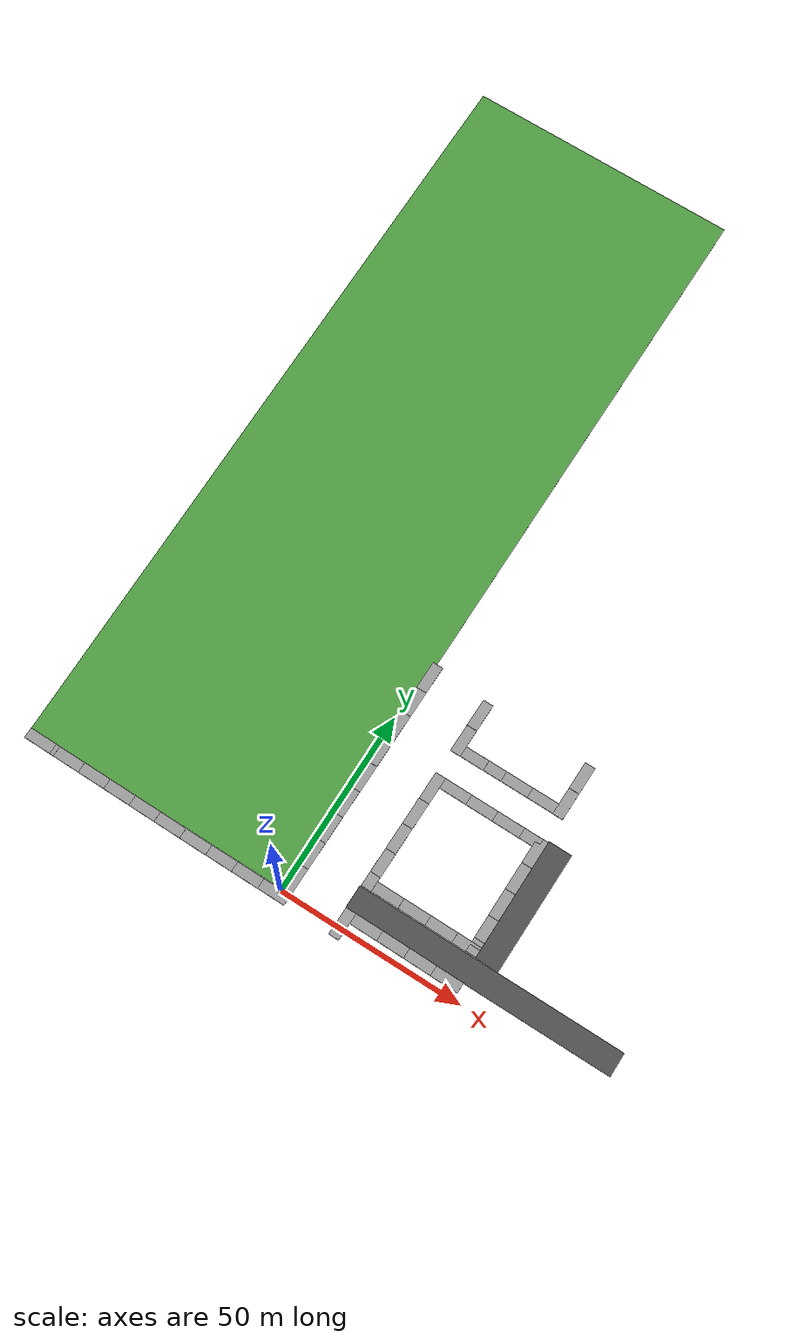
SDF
<sdf version="1.6">
 <world name="default">
  <model name="grey_wall_clone">
   <static>1</static>
   <link name="link">
    <pose>0 0 1.4 0 -0 0</pose>
    <collision name="collision"><geometry><box><size>7.5 0.2 2.8</size></box></geometry></collision>
    <visual name="visual">
     <cast_shadows>0</cast_shadows>
     <geometry><box><size>7.5 0.2 2.8</size></box></geometry>
     <material>
      <script>
       <uri>model://grey_wall/materials/scripts</uri>
       <uri>model://grey_wall/materials/textures</uri>
       <name>vrc/grey_wall</name>
      </script>
     </material>
    </visual>
   </link>
   <pose>-1.20689 0.282178 -0.016498 -1.5862 0.002658 3.13547</pose>
  </model>
  <model name="Grass">
   <link name="link_0">
    <inertial>
     <mass>1393.09</mass>
     <inertia>
      <ixx>639346</ixx>
      <ixy>0</ixy>
      <ixz>0</ixz>
      <iyy>5.00315e+06</iyy>
      <iyz>0</iyz>
      <izz>5.64249e+06</izz>
     </inertia>
    </inertial>
    <pose>41.4488 69.2093 0 0 0 -1.57123</pose>
    <gravity>0</gravity>
    <self_collide>1</self_collide>
    <visual name="visual">
     <geometry><box><size>207.597 74.211 0.068473</size></box></geometry>
     <material>
      <lighting>1</lighting>
      <script><uri>file://media/materials/scripts/gazebo.material</uri><name>Gazebo/Grass</name></script>
      <shader type="vertex"><normal_map>__default__</normal_map></shader>
      <ambient>0.3 0.3 0.3 1</ambient>
      <diffuse>0.7 0.7 0.7 1</diffuse>
      <specular>0.01 0.01 0.01 1</specular>
      <emissive>0 0 0 1</emissive>
     </material>
    </visual>
    <collision name="collision_0">
     <geometry><box><size>207.597 74.211 0.068473</size></box></geometry>
     <surface>
      <friction>
       <ode><mu>1</mu><mu2>1</mu2><fdir1>0 0 0</fdir1><slip1>0</slip1><slip2>0</slip2></ode>
       <torsional>
        <coefficient>1</coefficient>
        <patch_radius>0</patch_radius>
        <surface_radius>0</surface_radius>
        <use_patch_radius>1</use_patch_radius>
        <ode><slip>0</slip></ode>
       </torsional>
      </friction>
      <bounce><restitution_coefficient>0</restitution_coefficient><threshold>1e+06</threshold></bounce>
      <contact>
       <collide_without_contact>0</collide_without_contact>
       <collide_without_contact_bitmask>1</collide_without_contact_bitmask>
       <collide_bitmask>1</collide_bitmask>
       <ode>
        <soft_cfm>0</soft_cfm>
        <soft_erp>0.2</soft_erp>
        <kp>1e+13</kp>
        <kd>1</kd>
        <max_vel>0.01</max_vel>
        <min_depth>0</min_depth>
       </ode>
       <bullet>
        <split_impulse>1</split_impulse>
        <split_impulse_penetration_threshold>-0.01</split_impulse_penetration_threshold>
        <soft_cfm>0</soft_cfm>
        <soft_erp>0.2</soft_erp>
        <kp>1e+13</kp>
        <kd>1</kd>
       </bullet>
      </contact>
     </surface>
    </collision>
   </link>
   <static>1</static>
   <pose>-77.1234 35.0147 0 0 -0 0</pose>
  </model>
  <model name="grey_wall_clone_clone">
   <static>1</static>
   <link name="link">
    <pose>0 0 1.4 0 -0 0</pose>
    <collision name="collision"><geometry><box><size>7.5 0.2 2.8</size></box></geometry></collision>
    <visual name="visual">
     <cast_shadows>0</cast_shadows>
     <geometry><box><size>7.5 0.2 2.8</size></box></geometry>
     <material>
      <script>
       <uri>model://grey_wall/materials/scripts</uri>
       <uri>model://grey_wall/materials/textures</uri>
       <name>vrc/grey_wall</name>
      </script>
     </material>
    </visual>
   </link>
   <pose>-8.68806 0.297918 -0.016498 -1.5862 0.002658 3.13547</pose>
  </model>
  <model name="grey_wall_clone_clone_0">
   <static>1</static>
   <link name="link">
    <pose>0 0 1.4 0 -0 0</pose>
    <collision name="collision"><geometry><box><size>7.5 0.2 2.8</size></box></geometry></collision>
    <visual name="visual">
     <cast_shadows>0</cast_shadows>
     <geometry><box><size>7.5 0.2 2.8</size></box></geometry>
     <material>
      <script>
       <uri>model://grey_wall/materials/scripts</uri>
       <uri>model://grey_wall/materials/textures</uri>
       <name>vrc/grey_wall</name>
      </script>
     </material>
    </visual>
   </link>
   <pose>-16.1629 0.317248 -0.016498 -1.5862 0.002658 3.13547</pose>
  </model>
  <model name="grey_wall_clone_clone_1">
   <static>1</static>
   <link name="link">
    <pose>0 0 1.4 0 -0 0</pose>
    <collision name="collision"><geometry><box><size>7.5 0.2 2.8</size></box></geometry></collision>
    <visual name="visual">
     <cast_shadows>0</cast_shadows>
     <geometry><box><size>7.5 0.2 2.8</size></box></geometry>
     <material>
      <script>
       <uri>model://grey_wall/materials/scripts</uri>
       <uri>model://grey_wall/materials/textures</uri>
       <name>vrc/grey_wall</name>
      </script>
     </material>
    </visual>
   </link>
   <pose>-23.6084 0.328788 -0.016498 -1.5862 0.002658 3.13547</pose>
  </model>
  <model name="grey_wall_clone_clone_2">
   <static>1</static>
   <link name="link">
    <pose>0 0 1.4 0 -0 0</pose>
    <collision name="collision"><geometry><box><size>7.5 0.2 2.8</size></box></geometry></collision>
    <visual name="visual">
     <cast_shadows>0</cast_shadows>
     <geometry><box><size>7.5 0.2 2.8</size></box></geometry>
     <material>
      <script>
       <uri>model://grey_wall/materials/scripts</uri>
       <uri>model://grey_wall/materials/textures</uri>
       <name>vrc/grey_wall</name>
      </script>
     </material>
    </visual>
   </link>
   <pose>-31.0663 0.368188 -0.016498 -1.5862 0.002658 3.13547</pose>
  </model>
  <model name="grey_wall_clone_clone_3">
   <static>1</static>
   <link name="link">
    <pose>0 0 1.4 0 -0 0</pose>
    <collision name="collision"><geometry><box><size>7.5 0.2 2.8</size></box></geometry></collision>
    <visual name="visual">
     <cast_shadows>0</cast_shadows>
     <geometry><box><size>7.5 0.2 2.8</size></box></geometry>
     <material>
      <script>
       <uri>model://grey_wall/materials/scripts</uri>
       <uri>model://grey_wall/materials/textures</uri>
       <name>vrc/grey_wall</name>
      </script>
     </material>
    </visual>
   </link>
   <pose>-38.4619 0.420228 -0.016498 -1.5862 0.002658 3.13547</pose>
  </model>
  <model name="grey_wall_clone_clone_4">
   <static>1</static>
   <link name="link">
    <pose>0 0 1.4 0 -0 0</pose>
    <collision name="collision"><geometry><box><size>7.5 0.2 2.8</size></box></geometry></collision>
    <visual name="visual">
     <cast_shadows>0</cast_shadows>
     <geometry><box><size>7.5 0.2 2.8</size></box></geometry>
     <material>
      <script>
       <uri>model://grey_wall/materials/scripts</uri>
       <uri>model://grey_wall/materials/textures</uri>
       <name>vrc/grey_wall</name>
      </script>
     </material>
    </visual>
   </link>
   <pose>-45.7935 0.470214 -0.016498 -1.5862 0.002658 3.13547</pose>
  </model>
  <model name="grey_wall_clone_clone_5">
   <static>1</static>
   <link name="link">
    <pose>0 0 1.4 0 -0 0</pose>
    <collision name="collision"><geometry><box><size>7.5 0.2 2.8</size></box></geometry></collision>
    <visual name="visual">
     <cast_shadows>0</cast_shadows>
     <geometry><box><size>7.5 0.2 2.8</size></box></geometry>
     <material>
      <script>
       <uri>model://grey_wall/materials/scripts</uri>
       <uri>model://grey_wall/materials/textures</uri>
       <name>vrc/grey_wall</name>
      </script>
     </material>
    </visual>
   </link>
   <pose>-53.2131 0.521137 -0.016498 -1.5862 0.002658 3.13547</pose>
  </model>
  <model name="grey_wall_clone_clone_6">
   <static>1</static>
   <link name="link">
    <pose>0 0 1.4 0 -0 0</pose>
    <collision name="collision"><geometry><box><size>7.5 0.2 2.8</size></box></geometry></collision>
    <visual name="visual">
     <cast_shadows>0</cast_shadows>
     <geometry><box><size>7.5 0.2 2.8</size></box></geometry>
     <material>
      <script>
       <uri>model://grey_wall/materials/scripts</uri>
       <uri>model://grey_wall/materials/textures</uri>
       <name>vrc/grey_wall</name>
      </script>
     </material>
    </visual>
   </link>
   <pose>-60.7192 0.56687 -0.016498 -1.5862 0.002658 3.13547</pose>
  </model>
  <model name="grey_wall_clone_clone_7">
   <static>1</static>
   <link name="link">
    <pose>0 0 1.4 0 -0 0</pose>
    <collision name="collision"><geometry><box><size>7.5 0.2 2.8</size></box></geometry></collision>
    <visual name="visual">
     <cast_shadows>0</cast_shadows>
     <geometry><box><size>7.5 0.2 2.8</size></box></geometry>
     <material>
      <script>
       <uri>model://grey_wall/materials/scripts</uri>
       <uri>model://grey_wall/materials/textures</uri>
       <name>vrc/grey_wall</name>
      </script>
     </material>
    </visual>
   </link>
   <pose>-68.0673 0.620468 -0.016498 -1.5862 0.002658 3.13547</pose>
  </model>
  <model name="grey_wall_clone_clone_8">
   <static>1</static>
   <link name="link">
    <pose>0 0 1.4 0 -0 0</pose>
    <collision name="collision"><geometry><box><size>7.5 0.2 2.8</size></box></geometry></collision>
    <visual name="visual">
     <cast_shadows>0</cast_shadows>
     <geometry><box><size>7.5 0.2 2.8</size></box></geometry>
     <material>
      <script>
       <uri>model://grey_wall/materials/scripts</uri>
       <uri>model://grey_wall/materials/textures</uri>
       <name>vrc/grey_wall</name>
      </script>
     </material>
    </visual>
   </link>
   <pose>-69.1277 0.631045 -0.012312 -1.5862 0.002658 3.13547</pose>
  </model>
  <model name="grey_wall_clone_clone_9">
   <static>1</static>
   <link name="link">
    <pose>0 0 1.4 0 -0 0</pose>
    <collision name="collision"><geometry><box><size>7.5 0.2 2.8</size></box></geometry></collision>
    <visual name="visual">
     <cast_shadows>0</cast_shadows>
     <geometry><box><size>7.5 0.2 2.8</size></box></geometry>
     <material>
      <script>
       <uri>model://grey_wall/materials/scripts</uri>
       <uri>model://grey_wall/materials/textures</uri>
       <name>vrc/grey_wall</name>
      </script>
     </material>
    </visual>
   </link>
   <pose>2.599 4.01474 -0.016998 -1.57343 0.001892 1.56332</pose>
  </model>
  <model name="grey_wall_clone_clone_9_clone">
   <static>1</static>
   <link name="link">
    <pose>0 0 1.4 0 -0 0</pose>
    <collision name="collision"><geometry><box><size>7.5 0.2 2.8</size></box></geometry></collision>
    <visual name="visual">
     <cast_shadows>0</cast_shadows>
     <geometry><box><size>7.5 0.2 2.8</size></box></geometry>
     <material>
      <script>
       <uri>model://grey_wall/materials/scripts</uri>
       <uri>model://grey_wall/materials/textures</uri>
       <name>vrc/grey_wall</name>
      </script>
     </material>
    </visual>
   </link>
   <pose>2.65569 11.4997 -0.016993 -1.57343 0.001892 1.56332</pose>
  </model>
  <model name="grey_wall_clone_clone_9_clone_0">
   <static>1</static>
   <link name="link">
    <pose>0 0 1.4 0 -0 0</pose>
    <collision name="collision"><geometry><box><size>7.5 0.2 2.8</size></box></geometry></collision>
    <visual name="visual">
     <cast_shadows>0</cast_shadows>
     <geometry><box><size>7.5 0.2 2.8</size></box></geometry>
     <material>
      <script>
       <uri>model://grey_wall/materials/scripts</uri>
       <uri>model://grey_wall/materials/textures</uri>
       <name>vrc/grey_wall</name>
      </script>
     </material>
    </visual>
   </link>
   <pose>2.70398 18.9263 -0.016993 -1.57343 0.001892 1.56332</pose>
  </model>
  <model name="grey_wall_clone_clone_9_clone_1">
   <static>1</static>
   <link name="link">
    <pose>0 0 1.4 0 -0 0</pose>
    <collision name="collision"><geometry><box><size>7.5 0.2 2.8</size></box></geometry></collision>
    <visual name="visual">
     <cast_shadows>0</cast_shadows>
     <geometry><box><size>7.5 0.2 2.8</size></box></geometry>
     <material>
      <script>
       <uri>model://grey_wall/materials/scripts</uri>
       <uri>model://grey_wall/materials/textures</uri>
       <name>vrc/grey_wall</name>
      </script>
     </material>
    </visual>
   </link>
   <pose>2.73693 26.4458 -0.01692 -1.57343 0.001892 1.56332</pose>
  </model>
  <model name="grey_wall_clone_clone_9_clone_2">
   <static>1</static>
   <link name="link">
    <pose>0 0 1.4 0 -0 0</pose>
    <collision name="collision"><geometry><box><size>7.5 0.2 2.8</size></box></geometry></collision>
    <visual name="visual">
     <cast_shadows>0</cast_shadows>
     <geometry><box><size>7.5 0.2 2.8</size></box></geometry>
     <material>
      <script>
       <uri>model://grey_wall/materials/scripts</uri>
       <uri>model://grey_wall/materials/textures</uri>
       <name>vrc/grey_wall</name>
      </script>
     </material>
    </visual>
   </link>
   <pose>2.82767 33.8561 -0.016993 -1.57343 0.001892 1.56332</pose>
  </model>
  <model name="grey_wall_clone_clone_9_clone_3">
   <static>1</static>
   <link name="link">
    <pose>0 0 1.4 0 -0 0</pose>
    <collision name="collision"><geometry><box><size>7.5 0.2 2.8</size></box></geometry></collision>
    <visual name="visual">
     <cast_shadows>0</cast_shadows>
     <geometry><box><size>7.5 0.2 2.8</size></box></geometry>
     <material>
      <script>
       <uri>model://grey_wall/materials/scripts</uri>
       <uri>model://grey_wall/materials/textures</uri>
       <name>vrc/grey_wall</name>
      </script>
     </material>
    </visual>
   </link>
   <pose>2.88818 41.3325 -0.016993 -1.57343 0.001892 1.56332</pose>
  </model>
  <model name="grey_wall_clone_clone_9_clone_4">
   <static>1</static>
   <link name="link">
    <pose>0 0 1.4 0 -0 0</pose>
    <collision name="collision"><geometry><box><size>7.5 0.2 2.8</size></box></geometry></collision>
    <visual name="visual">
     <cast_shadows>0</cast_shadows>
     <geometry><box><size>7.5 0.2 2.8</size></box></geometry>
     <material>
      <script>
       <uri>model://grey_wall/materials/scripts</uri>
       <uri>model://grey_wall/materials/textures</uri>
       <name>vrc/grey_wall</name>
      </script>
     </material>
    </visual>
   </link>
   <pose>2.94309 48.7292 -0.016993 -1.57343 0.001892 1.56332</pose>
  </model>
  <model name="grey_wall_clone_clone_9_clone_5">
   <static>1</static>
   <link name="link">
    <pose>0 0 1.4 0 -0 0</pose>
    <collision name="collision"><geometry><box><size>7.5 0.2 2.8</size></box></geometry></collision>
    <visual name="visual">
     <cast_shadows>0</cast_shadows>
     <geometry><box><size>7.5 0.2 2.8</size></box></geometry>
     <material>
      <script>
       <uri>model://grey_wall/materials/scripts</uri>
       <uri>model://grey_wall/materials/textures</uri>
       <name>vrc/grey_wall</name>
      </script>
     </material>
    </visual>
   </link>
   <pose>3.00389 56.2219 -0.016993 -1.57343 0.001892 1.56332</pose>
  </model>
  <model name="grey_wall_clone_clone_9_clone_6">
   <static>1</static>
   <link name="link">
    <pose>0 0 1.4 0 -0 0</pose>
    <collision name="collision"><geometry><box><size>7.5 0.2 2.8</size></box></geometry></collision>
    <visual name="visual">
     <cast_shadows>0</cast_shadows>
     <geometry><box><size>7.5 0.2 2.8</size></box></geometry>
     <material>
      <script>
       <uri>model://grey_wall/materials/scripts</uri>
       <uri>model://grey_wall/materials/textures</uri>
       <name>vrc/grey_wall</name>
      </script>
     </material>
    </visual>
   </link>
   <pose>3.05758 63.3006 -0.016993 -1.57343 0.001892 1.56332</pose>
  </model>
  <model name="grey_wall_clone_clone_10">
   <static>1</static>
   <link name="link">
    <pose>0 0 1.4 0 -0 0</pose>
    <collision name="collision"><geometry><box><size>7.5 0.2 2.8</size></box></geometry></collision>
    <visual name="visual">
     <cast_shadows>0</cast_shadows>
     <geometry><box><size>7.5 0.2 2.8</size></box></geometry>
     <material>
      <script>
       <uri>model://grey_wall/materials/scripts</uri>
       <uri>model://grey_wall/materials/textures</uri>
       <name>vrc/grey_wall</name>
      </script>
     </material>
    </visual>
   </link>
   <pose>21.7064 4.98903 -0.013396 -1.5862 0.002658 3.13547</pose>
  </model>
  <model name="grey_wall_clone_clone_9_clone_26">
   <static>1</static>
   <link name="link">
    <pose>0 0 1.4 0 -0 0</pose>
    <collision name="collision"><geometry><box><size>7.5 0.2 2.8</size></box></geometry></collision>
    <visual name="visual">
     <cast_shadows>0</cast_shadows>
     <geometry><box><size>7.5 0.2 2.8</size></box></geometry>
     <material>
      <script>
       <uri>model://grey_wall/materials/scripts</uri>
       <uri>model://grey_wall/materials/textures</uri>
       <name>vrc/grey_wall</name>
      </script>
     </material>
    </visual>
   </link>
   <pose>17.9158 1.22551 -0.017166 -1.57343 0.001892 1.56332</pose>
  </model>
  <model name="grey_wall_clone_clone_10_clone">
   <static>1</static>
   <link name="link">
    <pose>0 0 1.4 0 -0 0</pose>
    <collision name="collision"><geometry><box><size>7.5 0.2 2.8</size></box></geometry></collision>
    <visual name="visual">
     <cast_shadows>0</cast_shadows>
     <geometry><box><size>7.5 0.2 2.8</size></box></geometry>
     <material>
      <script>
       <uri>model://grey_wall/materials/scripts</uri>
       <uri>model://grey_wall/materials/textures</uri>
       <name>vrc/grey_wall</name>
      </script>
     </material>
    </visual>
   </link>
   <pose>29.2163 4.97085 -0.013115 -1.5862 0.002658 3.13547</pose>
  </model>
  <model name="grey_wall_clone_clone_10_clone_0">
   <static>1</static>
   <link name="link">
    <pose>0 0 1.4 0 -0 0</pose>
    <collision name="collision"><geometry><box><size>7.5 0.2 2.8</size></box></geometry></collision>
    <visual name="visual">
     <cast_shadows>0</cast_shadows>
     <geometry><box><size>7.5 0.2 2.8</size></box></geometry>
     <material>
      <script>
       <uri>model://grey_wall/materials/scripts</uri>
       <uri>model://grey_wall/materials/textures</uri>
       <name>vrc/grey_wall</name>
      </script>
     </material>
    </visual>
   </link>
   <pose>36.7163 4.92179 -0.013076 -1.5862 0.002658 3.13547</pose>
  </model>
  <model name="grey_wall_clone_clone_10_clone_1">
   <static>1</static>
   <link name="link">
    <pose>0 0 1.4 0 -0 0</pose>
    <collision name="collision"><geometry><box><size>7.5 0.2 2.8</size></box></geometry></collision>
    <visual name="visual">
     <cast_shadows>0</cast_shadows>
     <geometry><box><size>7.5 0.2 2.8</size></box></geometry>
     <material>
      <script>
       <uri>model://grey_wall/materials/scripts</uri>
       <uri>model://grey_wall/materials/textures</uri>
       <name>vrc/grey_wall</name>
      </script>
     </material>
    </visual>
   </link>
   <pose>44.1707 4.85128 -0.01475 -1.5862 0.002658 3.13547</pose>
  </model>
  <model name="grey_wall_clone_clone_9_clone_26_clone_0_clone_2_clone_4_clone_2_clone_31">
   <static>1</static>
   <link name="link">
    <pose>0 0 1.4 0 -0 0</pose>
    <collision name="collision"><geometry><box><size>7.5 0.2 2.8</size></box></geometry></collision>
    <visual name="visual">
     <cast_shadows>0</cast_shadows>
     <geometry><box><size>7.5 0.2 2.8</size></box></geometry>
     <material>
      <script>
       <uri>model://grey_wall/materials/scripts</uri>
       <uri>model://grey_wall/materials/textures</uri>
       <name>vrc/grey_wall</name>
      </script>
     </material>
    </visual>
   </link>
   <pose>47.2963 54.2249 -0.017166 -1.57343 0.001892 1.56332</pose>
  </model>
  <model name="grey_wall_clone_clone_9_clone_26_clone_0_clone_2_clone_4_clone_2_clone_32">
   <static>1</static>
   <link name="link">
    <pose>0 0 1.4 0 -0 0</pose>
    <collision name="collision"><geometry><box><size>7.5 0.2 2.8</size></box></geometry></collision>
    <visual name="visual">
     <cast_shadows>0</cast_shadows>
     <geometry><box><size>7.5 0.2 2.8</size></box></geometry>
     <material>
      <script>
       <uri>model://grey_wall/materials/scripts</uri>
       <uri>model://grey_wall/materials/textures</uri>
       <name>vrc/grey_wall</name>
      </script>
     </material>
    </visual>
   </link>
   <pose>47.3534 61.7351 -0.017166 -1.57343 0.001892 1.56332</pose>
  </model>
  <model name="grey_wall_clone_clone_9_clone_26_clone_0_clone_2_clone_4_clone_2_clone_38">
   <static>1</static>
   <link name="link">
    <pose>0 0 1.4 0 -0 0</pose>
    <collision name="collision"><geometry><box><size>7.5 0.2 2.8</size></box></geometry></collision>
    <visual name="visual">
     <cast_shadows>0</cast_shadows>
     <geometry><box><size>7.5 0.2 2.8</size></box></geometry>
     <material>
      <script>
       <uri>model://grey_wall/materials/scripts</uri>
       <uri>model://grey_wall/materials/textures</uri>
       <name>vrc/grey_wall</name>
      </script>
     </material>
    </visual>
   </link>
   <pose>18.4355 61.8102 -0.017166 -1.57343 0.001892 1.56332</pose>
  </model>
  <model name="grey_wall_clone_clone_9_clone_26_clone_0_clone_2_clone_4_clone_2_clone_37">
   <static>1</static>
   <link name="link">
    <pose>0 0 1.4 0 -0 0</pose>
    <collision name="collision"><geometry><box><size>7.5 0.2 2.8</size></box></geometry></collision>
    <visual name="visual">
     <cast_shadows>0</cast_shadows>
     <geometry><box><size>7.5 0.2 2.8</size></box></geometry>
     <material>
      <script>
       <uri>model://grey_wall/materials/scripts</uri>
       <uri>model://grey_wall/materials/textures</uri>
       <name>vrc/grey_wall</name>
      </script>
     </material>
    </visual>
   </link>
   <pose>18.4013 54.3012 -0.017166 -1.57343 0.001892 1.56332</pose>
  </model>
  <model name="grey_wall_clone_clone_9_clone_26_clone_0_clone_2_clone_4_clone_2_clone_43">
   <static>1</static>
   <link name="link">
    <pose>0 0 1.4 0 -0 0</pose>
    <collision name="collision"><geometry><box><size>7.5 0.2 2.8</size></box></geometry></collision>
    <visual name="visual">
     <cast_shadows>0</cast_shadows>
     <geometry><box><size>7.5 0.2 2.8</size></box></geometry>
     <material>
      <script>
       <uri>model://grey_wall/materials/scripts</uri>
       <uri>model://grey_wall/materials/textures</uri>
       <name>vrc/grey_wall</name>
      </script>
     </material>
    </visual>
   </link>
   <pose>18.3391 40.2844 -0.017166 -1.57343 0.001892 1.56332</pose>
  </model>
  <model name="grey_wall_clone_clone_9_clone_26_clone_0_clone_2_clone_4_clone_2_clone_44">
   <static>1</static>
   <link name="link">
    <pose>0 0 1.4 0 -0 0</pose>
    <collision name="collision"><geometry><box><size>7.5 0.2 2.8</size></box></geometry></collision>
    <visual name="visual">
     <cast_shadows>0</cast_shadows>
     <geometry><box><size>7.5 0.2 2.8</size></box></geometry>
     <material>
      <script>
       <uri>model://grey_wall/materials/scripts</uri>
       <uri>model://grey_wall/materials/textures</uri>
       <name>vrc/grey_wall</name>
      </script>
     </material>
    </visual>
   </link>
   <pose>18.2638 32.9824 -0.017166 -1.57343 0.001892 1.56332</pose>
  </model>
  <model name="grey_wall_clone_clone_9_clone_26_clone_0_clone_2_clone_4_clone_2_clone_45">
   <static>1</static>
   <link name="link">
    <pose>0 0 1.4 0 -0 0</pose>
    <collision name="collision"><geometry><box><size>7.5 0.2 2.8</size></box></geometry></collision>
    <visual name="visual">
     <cast_shadows>0</cast_shadows>
     <geometry><box><size>7.5 0.2 2.8</size></box></geometry>
     <material>
      <script>
       <uri>model://grey_wall/materials/scripts</uri>
       <uri>model://grey_wall/materials/textures</uri>
       <name>vrc/grey_wall</name>
      </script>
     </material>
    </visual>
   </link>
   <pose>18.188 25.7192 -0.017166 -1.57343 0.001892 1.56332</pose>
  </model>
  <model name="grey_wall_clone_clone_9_clone_26_clone_0_clone_2_clone_4_clone_2_clone_46">
   <static>1</static>
   <link name="link">
    <pose>0 0 1.4 0 -0 0</pose>
    <collision name="collision"><geometry><box><size>7.5 0.2 2.8</size></box></geometry></collision>
    <visual name="visual">
     <cast_shadows>0</cast_shadows>
     <geometry><box><size>7.5 0.2 2.8</size></box></geometry>
     <material>
      <script>
       <uri>model://grey_wall/materials/scripts</uri>
       <uri>model://grey_wall/materials/textures</uri>
       <name>vrc/grey_wall</name>
      </script>
     </material>
    </visual>
   </link>
   <pose>18.1755 19.0276 -0.017166 -1.57343 0.001892 1.56332</pose>
  </model>
  <model name="grey_wall_clone_clone_9_clone_26_clone_0_clone_2_clone_4_clone_2_clone_47">
   <static>1</static>
   <link name="link">
    <pose>0 0 1.4 0 -0 0</pose>
    <collision name="collision"><geometry><box><size>7.5 0.2 2.8</size></box></geometry></collision>
    <visual name="visual">
     <cast_shadows>0</cast_shadows>
     <geometry><box><size>7.5 0.2 2.8</size></box></geometry>
     <material>
      <script>
       <uri>model://grey_wall/materials/scripts</uri>
       <uri>model://grey_wall/materials/textures</uri>
       <name>vrc/grey_wall</name>
      </script>
     </material>
    </visual>
   </link>
   <pose>18.1043 15.0054 -0.017166 -1.57343 0.001892 1.56332</pose>
  </model>
  <model name="grey_wall_clone_clone_9_clone_26_clone_0_clone_2_clone_4_clone_2_clone_48">
   <static>1</static>
   <link name="link">
    <pose>0 0 1.4 0 -0 0</pose>
    <collision name="collision"><geometry><box><size>7.5 0.2 2.8</size></box></geometry></collision>
    <visual name="visual">
     <cast_shadows>0</cast_shadows>
     <geometry><box><size>7.5 0.2 2.8</size></box></geometry>
     <material>
      <script>
       <uri>model://grey_wall/materials/scripts</uri>
       <uri>model://grey_wall/materials/textures</uri>
       <name>vrc/grey_wall</name>
      </script>
     </material>
    </visual>
   </link>
   <pose>47.2403 40.1997 -0.017166 -1.57343 0.001892 1.56332</pose>
  </model>
  <model name="grey_wall_clone_clone_9_clone_26_clone_0_clone_2_clone_4_clone_2_clone_49">
   <static>1</static>
   <link name="link">
    <pose>0 0 1.4 0 -0 0</pose>
    <collision name="collision"><geometry><box><size>7.5 0.2 2.8</size></box></geometry></collision>
    <visual name="visual">
     <cast_shadows>0</cast_shadows>
     <geometry><box><size>7.5 0.2 2.8</size></box></geometry>
     <material>
      <script>
       <uri>model://grey_wall/materials/scripts</uri>
       <uri>model://grey_wall/materials/textures</uri>
       <name>vrc/grey_wall</name>
      </script>
     </material>
    </visual>
   </link>
   <pose>47.2089 32.7515 -0.017166 -1.57343 0.001892 1.56332</pose>
  </model>
  <model name="grey_wall_clone_clone_9_clone_26_clone_0_clone_2_clone_4_clone_2_clone_50">
   <static>1</static>
   <link name="link">
    <pose>0 0 1.4 0 -0 0</pose>
    <collision name="collision"><geometry><box><size>7.5 0.2 2.8</size></box></geometry></collision>
    <visual name="visual">
     <cast_shadows>0</cast_shadows>
     <geometry><box><size>7.5 0.2 2.8</size></box></geometry>
     <material>
      <script>
       <uri>model://grey_wall/materials/scripts</uri>
       <uri>model://grey_wall/materials/textures</uri>
       <name>vrc/grey_wall</name>
      </script>
     </material>
    </visual>
   </link>
   <pose>47.1787 25.2763 -0.017166 -1.57343 0.001892 1.56332</pose>
  </model>
  <model name="grey_wall_clone_clone_9_clone_26_clone_0_clone_2_clone_4_clone_2_clone_51">
   <static>1</static>
   <link name="link">
    <pose>0 0 1.4 0 -0 0</pose>
    <collision name="collision"><geometry><box><size>7.5 0.2 2.8</size></box></geometry></collision>
    <visual name="visual">
     <cast_shadows>0</cast_shadows>
     <geometry><box><size>7.5 0.2 2.8</size></box></geometry>
     <material>
      <script>
       <uri>model://grey_wall/materials/scripts</uri>
       <uri>model://grey_wall/materials/textures</uri>
       <name>vrc/grey_wall</name>
      </script>
     </material>
    </visual>
   </link>
   <pose>47.1824 19.0235 -0.017166 -1.57343 0.001892 1.56332</pose>
  </model>
  <model name="grey_wall_clone_clone_9_clone_26_clone_0_clone_2_clone_4_clone_2_clone_52">
   <static>1</static>
   <link name="link">
    <pose>0 0 1.4 0 -0 0</pose>
    <collision name="collision"><geometry><box><size>7.5 0.2 2.8</size></box></geometry></collision>
    <visual name="visual">
     <cast_shadows>0</cast_shadows>
     <geometry><box><size>7.5 0.2 2.8</size></box></geometry>
     <material>
      <script>
       <uri>model://grey_wall/materials/scripts</uri>
       <uri>model://grey_wall/materials/textures</uri>
       <name>vrc/grey_wall</name>
      </script>
     </material>
    </visual>
   </link>
   <pose>47.1698 15.1354 -0.017166 -1.57343 0.001892 1.56332</pose>
  </model>
  <model name="grey_wall_clone_clone_10_clone_4">
   <static>1</static>
   <link name="link">
    <pose>0 0 1.4 0 -0 0</pose>
    <collision name="collision"><geometry><box><size>7.5 0.2 2.8</size></box></geometry></collision>
    <visual name="visual">
     <cast_shadows>0</cast_shadows>
     <geometry><box><size>7.5 0.2 2.8</size></box></geometry>
     <material>
      <script>
       <uri>model://grey_wall/materials/scripts</uri>
       <uri>model://grey_wall/materials/textures</uri>
       <name>vrc/grey_wall</name>
      </script>
     </material>
    </visual>
   </link>
   <pose>21.8305 14.1416 -0.013396 -1.5862 0.002658 3.13547</pose>
  </model>
  <model name="grey_wall_clone_clone_10_clone_5">
   <static>1</static>
   <link name="link">
    <pose>0 0 1.4 0 -0 0</pose>
    <collision name="collision"><geometry><box><size>7.5 0.2 2.8</size></box></geometry></collision>
    <visual name="visual">
     <cast_shadows>0</cast_shadows>
     <geometry><box><size>7.5 0.2 2.8</size></box></geometry>
     <material>
      <script>
       <uri>model://grey_wall/materials/scripts</uri>
       <uri>model://grey_wall/materials/textures</uri>
       <name>vrc/grey_wall</name>
      </script>
     </material>
    </visual>
   </link>
   <pose>29.337 14.1241 -0.013396 -1.5862 0.002658 3.13547</pose>
  </model>
  <model name="grey_wall_clone_clone_10_clone_6">
   <static>1</static>
   <link name="link">
    <pose>0 0 1.4 0 -0 0</pose>
    <collision name="collision"><geometry><box><size>7.5 0.2 2.8</size></box></geometry></collision>
    <visual name="visual">
     <cast_shadows>0</cast_shadows>
     <geometry><box><size>7.5 0.2 2.8</size></box></geometry>
     <material>
      <script>
       <uri>model://grey_wall/materials/scripts</uri>
       <uri>model://grey_wall/materials/textures</uri>
       <name>vrc/grey_wall</name>
      </script>
     </material>
    </visual>
   </link>
   <pose>36.7964 14.1166 -0.013396 -1.5862 0.002658 3.13547</pose>
  </model>
  <model name="grey_wall_clone_clone_10_clone_7">
   <static>1</static>
   <link name="link">
    <pose>0 0 1.4 0 -0 0</pose>
    <collision name="collision"><geometry><box><size>7.5 0.2 2.8</size></box></geometry></collision>
    <visual name="visual">
     <cast_shadows>0</cast_shadows>
     <geometry><box><size>7.5 0.2 2.8</size></box></geometry>
     <material>
      <script>
       <uri>model://grey_wall/materials/scripts</uri>
       <uri>model://grey_wall/materials/textures</uri>
       <name>vrc/grey_wall</name>
      </script>
     </material>
    </visual>
   </link>
   <pose>43.4196 14.1077 -0.012282 -1.5862 0.002658 3.13547</pose>
  </model>
  <model name="grey_wall_clone_clone_10_clone_8">
   <static>1</static>
   <link name="link">
    <pose>0 0 1.4 0 -0 0</pose>
    <collision name="collision"><geometry><box><size>7.5 0.2 2.8</size></box></geometry></collision>
    <visual name="visual">
     <cast_shadows>0</cast_shadows>
     <geometry><box><size>7.5 0.2 2.8</size></box></geometry>
     <material>
      <script>
       <uri>model://grey_wall/materials/scripts</uri>
       <uri>model://grey_wall/materials/textures</uri>
       <name>vrc/grey_wall</name>
      </script>
     </material>
    </visual>
   </link>
   <pose>22.0405 44.033 -0.013396 -1.5862 0.002658 3.13547</pose>
  </model>
  <model name="grey_wall_clone_clone_10_clone_9">
   <static>1</static>
   <link name="link">
    <pose>0 0 1.4 0 -0 0</pose>
    <collision name="collision"><geometry><box><size>7.5 0.2 2.8</size></box></geometry></collision>
    <visual name="visual">
     <cast_shadows>0</cast_shadows>
     <geometry><box><size>7.5 0.2 2.8</size></box></geometry>
     <material>
      <script>
       <uri>model://grey_wall/materials/scripts</uri>
       <uri>model://grey_wall/materials/textures</uri>
       <name>vrc/grey_wall</name>
      </script>
     </material>
    </visual>
   </link>
   <pose>29.5082 43.9818 -0.013396 -1.5862 0.002658 3.13547</pose>
  </model>
  <model name="grey_wall_clone_clone_10_clone_10">
   <static>1</static>
   <link name="link">
    <pose>0 0 1.4 0 -0 0</pose>
    <collision name="collision"><geometry><box><size>7.5 0.2 2.8</size></box></geometry></collision>
    <visual name="visual">
     <cast_shadows>0</cast_shadows>
     <geometry><box><size>7.5 0.2 2.8</size></box></geometry>
     <material>
      <script>
       <uri>model://grey_wall/materials/scripts</uri>
       <uri>model://grey_wall/materials/textures</uri>
       <name>vrc/grey_wall</name>
      </script>
     </material>
    </visual>
   </link>
   <pose>36.9688 43.938 -0.013396 -1.5862 0.002658 3.13547</pose>
  </model>
  <model name="grey_wall_clone_clone_10_clone_11">
   <static>1</static>
   <link name="link">
    <pose>0 0 1.4 0 -0 0</pose>
    <collision name="collision"><geometry><box><size>7.5 0.2 2.8</size></box></geometry></collision>
    <visual name="visual">
     <cast_shadows>0</cast_shadows>
     <geometry><box><size>7.5 0.2 2.8</size></box></geometry>
     <material>
      <script>
       <uri>model://grey_wall/materials/scripts</uri>
       <uri>model://grey_wall/materials/textures</uri>
       <name>vrc/grey_wall</name>
      </script>
     </material>
    </visual>
   </link>
   <pose>42.1292 43.9431 -0.013396 -1.5862 0.002658 3.13547</pose>
  </model>
  <model name="grey_wall_clone_clone_10_clone_12">
   <static>1</static>
   <link name="link">
    <pose>0 0 1.4 0 -0 0</pose>
    <collision name="collision"><geometry><box><size>7.5 0.2 2.8</size></box></geometry></collision>
    <visual name="visual">
     <cast_shadows>0</cast_shadows>
     <geometry><box><size>7.5 0.2 2.8</size></box></geometry>
     <material>
      <script>
       <uri>model://grey_wall/materials/scripts</uri>
       <uri>model://grey_wall/materials/textures</uri>
       <name>vrc/grey_wall</name>
      </script>
     </material>
    </visual>
   </link>
   <pose>40.8349 53.3616 -0.013396 -1.5862 0.002658 3.13547</pose>
  </model>
  <model name="grey_wall_clone_clone_10_clone_13">
   <static>1</static>
   <link name="link">
    <pose>0 0 1.4 0 -0 0</pose>
    <collision name="collision"><geometry><box><size>7.5 0.2 2.8</size></box></geometry></collision>
    <visual name="visual">
     <cast_shadows>0</cast_shadows>
     <geometry><box><size>7.5 0.2 2.8</size></box></geometry>
     <material>
      <script>
       <uri>model://grey_wall/materials/scripts</uri>
       <uri>model://grey_wall/materials/textures</uri>
       <name>vrc/grey_wall</name>
      </script>
     </material>
    </visual>
   </link>
   <pose>33.5125 53.3843 -0.013396 -1.5862 0.002658 3.13547</pose>
  </model>
  <model name="grey_wall_clone_clone_10_clone_14">
   <static>1</static>
   <link name="link">
    <pose>0 0 1.4 0 -0 0</pose>
    <collision name="collision"><geometry><box><size>7.5 0.2 2.8</size></box></geometry></collision>
    <visual name="visual">
     <cast_shadows>0</cast_shadows>
     <geometry><box><size>7.5 0.2 2.8</size></box></geometry>
     <material>
      <script>
       <uri>model://grey_wall/materials/scripts</uri>
       <uri>model://grey_wall/materials/textures</uri>
       <name>vrc/grey_wall</name>
      </script>
     </material>
    </visual>
   </link>
   <pose>26.0626 53.4036 -0.013396 -1.5862 0.002658 3.13547</pose>
  </model>
  <model name="Road_clone_clone">
   <static>1</static>
   <link name="link_0">
    <inertial>
     <mass>3902.93</mass>
     <inertia><ixx>13288.4</ixx><ixy>0</ixy><ixz>0</ixz><iyy>107351</iyy><iyz>0</iyz><izz>120639</izz></inertia>
    </inertial>
    <gravity>0</gravity>
    <self_collide>1</self_collide>
    <visual name="visual">
     <geometry><box><size>72.6629 6.39189 0.01701</size></box></geometry>
     <material>
      <lighting>1</lighting>
      <script><uri>file://media/materials/scripts/gazebo.material</uri><name>Gazebo/Road</name></script>
      <shader type="pixel"><normal_map>__default__</normal_map></shader>
      <ambient>0.1 0.1 0.1 1</ambient>
      <diffuse>0.8 0.8 0.8 1</diffuse>
      <specular>0.01 0.01 0.01 1</specular>
      <emissive>0 0 0 1</emissive>
     </material>
    </visual>
    <collision name="collision">
     <geometry><box><size>72.6629 6.39189 0.01701</size></box></geometry>
     <surface>
      <friction>
       <ode><mu>1</mu><mu2>1</mu2><fdir1>0 0 0</fdir1><slip1>0</slip1><slip2>0</slip2></ode>
       <torsional>
        <coefficient>1</coefficient>
        <patch_radius>0</patch_radius>
        <surface_radius>0</surface_radius>
        <use_patch_radius>1</use_patch_radius>
        <ode><slip>0</slip></ode>
       </torsional>
      </friction>
      <bounce><restitution_coefficient>0</restitution_coefficient><threshold>1e+06</threshold></bounce>
      <contact>
       <collide_without_contact>0</collide_without_contact>
       <collide_without_contact_bitmask>1</collide_without_contact_bitmask>
       <collide_bitmask>1</collide_bitmask>
       <ode>
        <soft_cfm>0</soft_cfm>
        <soft_erp>0.2</soft_erp>
        <kp>1e+13</kp>
        <kd>1</kd>
        <max_vel>0.01</max_vel>
        <min_depth>0</min_depth>
       </ode>
       <bullet>
        <split_impulse>1</split_impulse>
        <split_impulse_penetration_threshold>-0.01</split_impulse_penetration_threshold>
        <soft_cfm>0</soft_cfm>
        <soft_erp>0.2</soft_erp>
        <kp>1e+13</kp>
        <kd>1</kd>
       </bullet>
      </contact>
     </surface>
    </collision>
   </link>
   <static>0</static>
   <pose>51.3984 7.91766 0 0 -0 0</pose>
  </model>
  <model name="Road_0_clone_clone">
   <static>1</static>
   <link name="link_0">
    <inertial>
     <mass>3902.93</mass>
     <inertia><ixx>13288.4</ixx><ixy>0</ixy><ixz>0</ixz><iyy>107351</iyy><iyz>0</iyz><izz>120639</izz></inertia>
    </inertial>
    <gravity>0</gravity>
    <self_collide>1</self_collide>
    <visual name="visual">
     <geometry><box><size>33.0622 6.39189 0.01701</size></box></geometry>
     <material>
      <lighting>1</lighting>
      <script><uri>file://media/materials/scripts/gazebo.material</uri><name>Gazebo/Road</name></script>
      <shader type="pixel"><normal_map>__default__</normal_map></shader>
      <ambient>0.1 0.1 0.1 1</ambient>
      <diffuse>0.8 0.8 0.8 1</diffuse>
      <specular>0.01 0.01 0.01 1</specular>
      <emissive>0 0 0 1</emissive>
     </material>
    </visual>
    <collision name="collision">
     <geometry><box><size>33.0622 6.39189 0.01701</size></box></geometry>
     <surface>
      <friction>
       <ode><mu>1</mu><mu2>1</mu2><fdir1>0 0 0</fdir1><slip1>0</slip1><slip2>0</slip2></ode>
       <torsional>
        <coefficient>1</coefficient>
        <patch_radius>0</patch_radius>
        <surface_radius>0</surface_radius>
        <use_patch_radius>1</use_patch_radius>
        <ode><slip>0</slip></ode>
       </torsional>
      </friction>
      <bounce><restitution_coefficient>0</restitution_coefficient><threshold>1e+06</threshold></bounce>
      <contact>
       <collide_without_contact>0</collide_without_contact>
       <collide_without_contact_bitmask>1</collide_without_contact_bitmask>
       <collide_bitmask>1</collide_bitmask>
       <ode>
        <soft_cfm>0</soft_cfm>
        <soft_erp>0.2</soft_erp>
        <kp>1e+13</kp>
        <kd>1</kd>
        <max_vel>0.01</max_vel>
        <min_depth>0</min_depth>
       </ode>
       <bullet>
        <split_impulse>1</split_impulse>
        <split_impulse_penetration_threshold>-0.01</split_impulse_penetration_threshold>
        <soft_cfm>0</soft_cfm>
        <soft_erp>0.2</soft_erp>
        <kp>1e+13</kp>
        <kd>1</kd>
       </bullet>
      </contact>
     </surface>
    </collision>
   </link>
   <static>0</static>
   <pose>50.2873 27.7368 0 0 0 -1.57903</pose>
  </model>
  <model name="grey_wall_clone_clone_10_clone_14_clone">
   <static>1</static>
   <link name="link">
    <pose>0 0 1.4 0 -0 0</pose>
    <collision name="collision"><geometry><box><size>7.5 0.2 2.8</size></box></geometry></collision>
    <visual name="visual">
     <cast_shadows>0</cast_shadows>
     <geometry><box><size>7.5 0.2 2.8</size></box></geometry>
     <material>
      <script>
       <uri>model://grey_wall/materials/scripts</uri>
       <uri>model://grey_wall/materials/textures</uri>
       <name>vrc/grey_wall</name>
      </script>
     </material>
    </visual>
   </link>
   <pose>21.1186 53.3987 -0.013396 -1.5862 0.002658 3.13547</pose>
  </model>
 </world>
</sdf>
